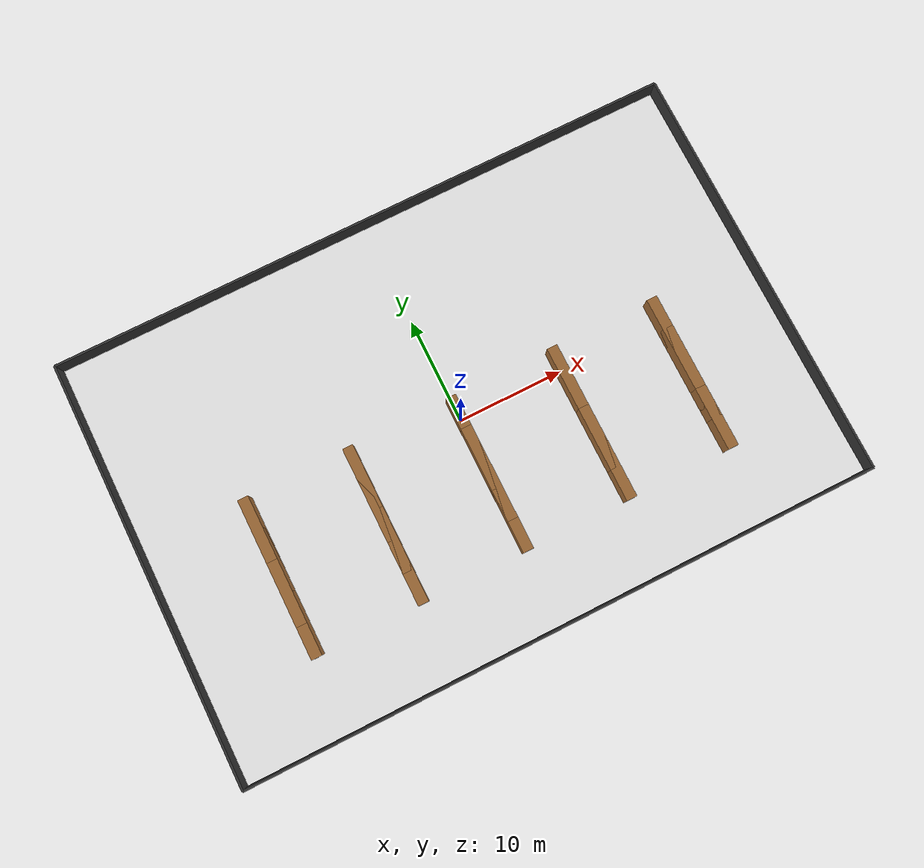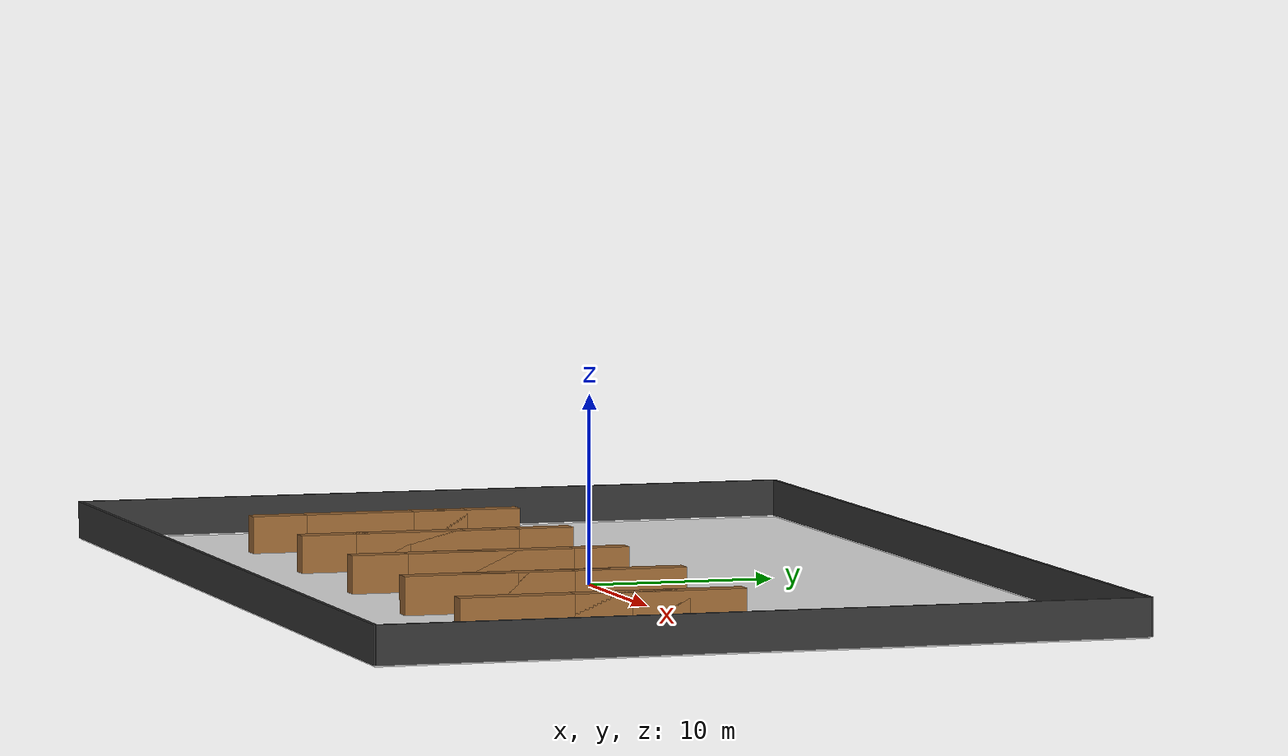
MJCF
<mujoco model="warehouse">
  <!-- визуальные настройки -->
  <visual>
    <global glow="0.4"/>
  </visual>

  <!-- свет сверху -->
  <option>
    <flag gravity="enable"/>
  </option>
  <worldbody>
    <light name="top_light" pos="0 0 6" directional="false" diffuse="0.8 0.8 0.8"/>

    <!-- пол -->
    <geom name="floor" type="plane" size="30 20 0.1" rgba="0.9 0.9 0.9 1"/>

    <!-- внешние стены -->
    <geom name="wall_north" type="box" pos="0 20 1" size="30 0.1 1" rgba="0.2 0.2 0.2 1"/>
    <geom name="wall_south" type="box" pos="0 -20 1" size="30 0.1 1" rgba="0.2 0.2 0.2 1"/>
    <geom name="wall_west"  type="box" pos="-30 0 1" size="0.1 20 1" rgba="0.2 0.2 0.2 1"/>
    <geom name="wall_east"  type="box" pos="30 0 1" size="0.1 20 1" rgba="0.2 0.2 0.2 1"/>

    <!-- Стеллажи: 3 ряда, по 4 стеллажа в каждом -->
    <!-- ряд 1 -->
    <geom name="rack_1_1" type="box" pos="-20 -10 1" size="0.5 3 1" rgba="0.6 0.4 0.2 1"/>
    <geom name="rack_1_2" type="box" pos="-20  -7 1" size="0.5 3 1" rgba="0.6 0.4 0.2 1"/>
    <geom name="rack_1_3" type="box" pos="-20  -4 1" size="0.5 3 1" rgba="0.6 0.4 0.2 1"/>
    <geom name="rack_1_4" type="box" pos="-20  -1 1" size="0.5 3 1" rgba="0.6 0.4 0.2 1"/>

    <!-- ряд 2 -->
    <geom name="rack_2_1" type="box" pos="-10 -10 1" size="0.5 3 1" rgba="0.6 0.4 0.2 1"/>
    <geom name="rack_2_2" type="box" pos="-10  -7 1" size="0.5 3 1" rgba="0.6 0.4 0.2 1"/>
    <geom name="rack_2_3" type="box" pos="-10  -4 1" size="0.5 3 1" rgba="0.6 0.4 0.2 1"/>
    <geom name="rack_2_4" type="box" pos="-10  -1 1" size="0.5 3 1" rgba="0.6 0.4 0.2 1"/>

    <!-- ряд 3 -->
    <geom name="rack_3_1" type="box" pos="0   -10 1" size="0.5 3 1" rgba="0.6 0.4 0.2 1"/>
    <geom name="rack_3_2" type="box" pos="0    -7 1" size="0.5 3 1" rgba="0.6 0.4 0.2 1"/>
    <geom name="rack_3_3" type="box" pos="0    -4 1" size="0.5 3 1" rgba="0.6 0.4 0.2 1"/>
    <geom name="rack_3_4" type="box" pos="0    -1 1" size="0.5 3 1" rgba="0.6 0.4 0.2 1"/>

    <!-- вторая часть стеллажей (симметрия относительно центра) -->
    <!-- ряд 4 -->
    <geom name="rack_4_1" type="box" pos="10 -10 1" size="0.5 3 1" rgba="0.6 0.4 0.2 1"/>
    <geom name="rack_4_2" type="box" pos="10  -7 1" size="0.5 3 1" rgba="0.6 0.4 0.2 1"/>
    <geom name="rack_4_3" type="box" pos="10  -4 1" size="0.5 3 1" rgba="0.6 0.4 0.2 1"/>
    <geom name="rack_4_4" type="box" pos="10  -1 1" size="0.5 3 1" rgba="0.6 0.4 0.2 1"/>

    <!-- ряд 5 -->
    <geom name="rack_5_1" type="box" pos="20 -10 1" size="0.5 3 1" rgba="0.6 0.4 0.2 1"/>
    <geom name="rack_5_2" type="box" pos="20  -7 1" size="0.5 3 1" rgba="0.6 0.4 0.2 1"/>
    <geom name="rack_5_3" type="box" pos="20  -4 1" size="0.5 3 1" rgba="0.6 0.4 0.2 1"/>
    <geom name="rack_5_4" type="box" pos="20  -1 1" size="0.5 3 1" rgba="0.6 0.4 0.2 1"/>
  </worldbody>
</mujoco>
